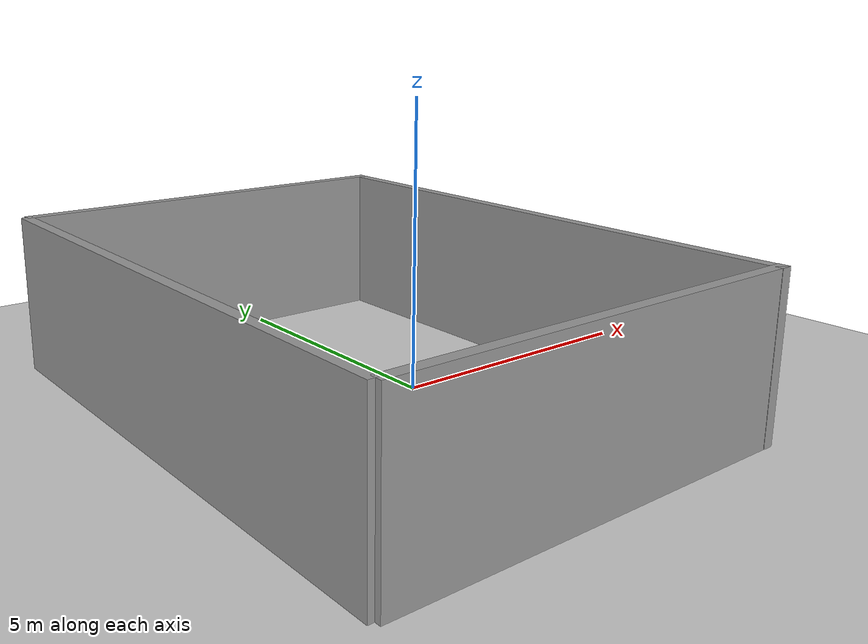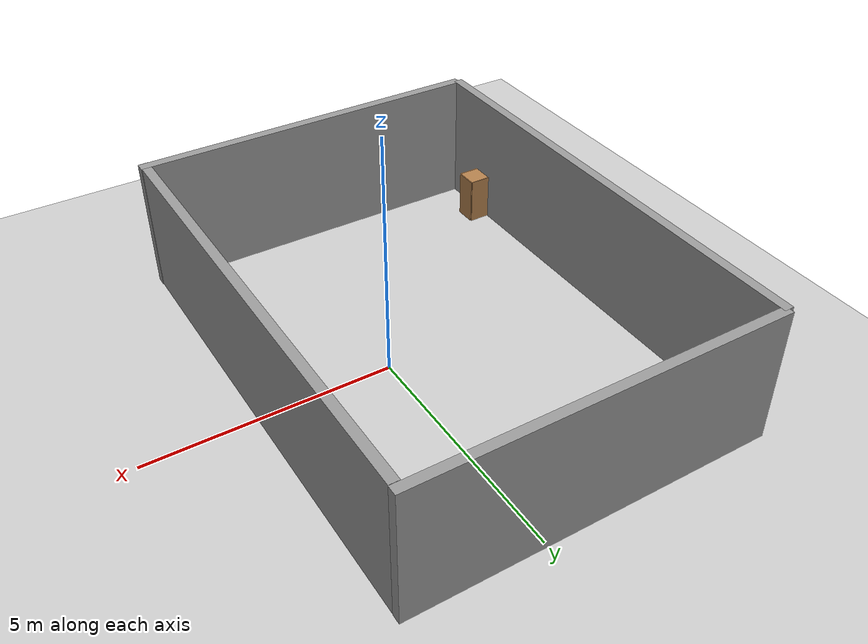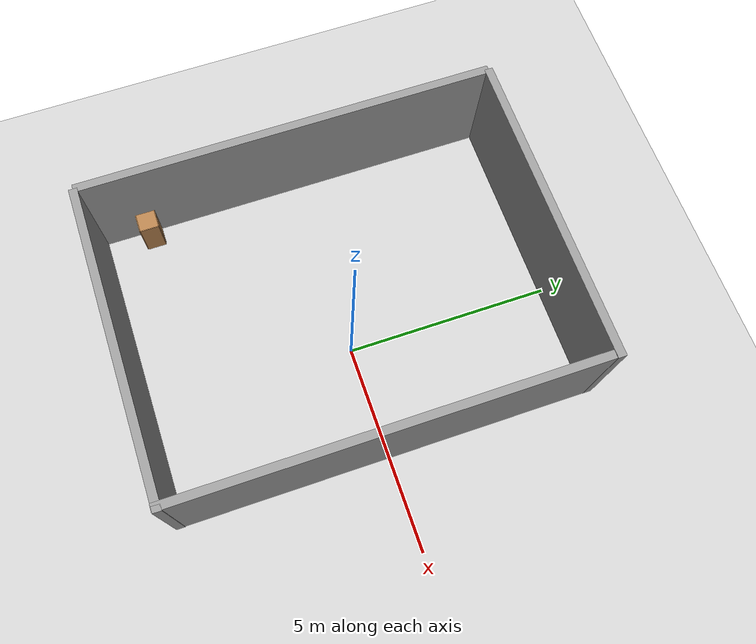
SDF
<sdf version="1.6">
 <world name="default">
  <light name="sun" type="directional">
   <pose>0 0 10 0 -0 0</pose>
   <diffuse>0.8 0.8 0.8 1</diffuse>
   <specular>0.2 0.2 0.2 1</specular>
   <attenuation>
    <range>1000</range>
    <constant>0.9</constant>
    <linear>0.01</linear>
    <quadratic>0.001</quadratic>
   </attenuation>
   <direction>-0.5 0.1 -0.9</direction>
  </light>
  <model name="ground_plane">
   <static>1</static>
   <link name="link">
    <collision name="collision">
     <geometry><plane><normal>0 0 1</normal><size>100 100</size></plane></geometry>
     <surface><friction><ode><mu>100</mu><mu2>50</mu2></ode></friction></surface>
    </collision>
    <visual name="visual">
     <cast_shadows>0</cast_shadows>
     <geometry><plane><normal>0 0 1</normal><size>100 100</size></plane></geometry>
     <material>
      <script><uri>file://media/materials/scripts/gazebo.material</uri><name>Gazebo/Grey</name></script>
     </material>
    </visual>
    <velocity_decay><linear>0</linear><angular>0</angular></velocity_decay>
   </link>
  </model>
  <physics name="default_physics" default="0" type="ode">
   <max_step_size>0.001</max_step_size>
   <real_time_factor>1</real_time_factor>
   <real_time_update_rate>1000</real_time_update_rate>
  </physics>
  <scene><ambient>0.4 0.4 0.4 1</ambient><background>0.7 0.7 0.7 1</background><shadows>1</shadows></scene>
  <spherical_coordinates>
   <surface_model>EARTH_WGS84</surface_model>
   <latitude_deg>0</latitude_deg>
   <longitude_deg>0</longitude_deg>
   <elevation>0</elevation>
   <heading_deg>0</heading_deg>
  </spherical_coordinates>
  <gravity>0 0 -9.8</gravity>
  <magnetic_field>6e-06 2.3e-05 -4.2e-05</magnetic_field>
  <atmosphere type="adiabatic"/>
  <model name="grey_wall">
   <static>1</static>
   <link name="link">
    <pose>0 0 1.4 0 -0 0</pose>
    <collision name="collision"><geometry><box><size>7.5 0.2 2.8</size></box></geometry></collision>
    <visual name="visual">
     <cast_shadows>0</cast_shadows>
     <geometry><box><size>7.5 0.2 2.8</size></box></geometry>
     <material>
      <script>
       <uri>model://grey_wall/materials/scripts</uri>
       <uri>model://grey_wall/materials/textures</uri>
       <name>vrc/grey_wall</name>
      </script>
     </material>
    </visual>
   </link>
   <pose>-1 -5 0 0 -0 0</pose>
  </model>
  <model name="grey_wall_0">
   <static>1</static>
   <link name="link">
    <pose>0 0 1.4 0 -0 0</pose>
    <collision name="collision"><geometry><box><size>7.5 0.2 2.8</size></box></geometry></collision>
    <visual name="visual">
     <cast_shadows>0</cast_shadows>
     <geometry><box><size>7.5 0.2 2.8</size></box></geometry>
     <material>
      <script>
       <uri>model://grey_wall/materials/scripts</uri>
       <uri>model://grey_wall/materials/textures</uri>
       <name>vrc/grey_wall</name>
      </script>
     </material>
    </visual>
   </link>
   <pose>-1 5 0 0 -0 0</pose>
  </model>
  <model name="grey_wall_1">
   <link name="link">
    <pose>0 0 1.4 0 -0 0</pose>
    <inertial>
     <mass>1</mass>
     <inertia><ixx>1</ixx><ixy>0</ixy><ixz>0</ixz><iyy>1</iyy><iyz>0</iyz><izz>1</izz></inertia>
    </inertial>
    <visual name="visual">
     <cast_shadows>0</cast_shadows>
     <geometry><box><size>10 0.2 2.8</size></box></geometry>
     <material>
      <script>
       <uri>model://grey_wall/materials/scripts</uri>
       <uri>model://grey_wall/materials/textures</uri>
       <name>vrc/grey_wall</name>
      </script>
      <shader type="pixel"><normal_map>__default__</normal_map></shader>
      <ambient>1 1 1 1</ambient>
      <diffuse>1 1 1 1</diffuse>
      <specular>0 0 0 1</specular>
      <emissive>0 0 0 1</emissive>
     </material>
    </visual>
    <collision name="collision">
     <geometry><box><size>10 0.2 2.8</size></box></geometry>
     <surface>
      <friction>
       <ode><mu>1</mu><mu2>1</mu2><fdir1>0 0 0</fdir1><slip1>0</slip1><slip2>0</slip2></ode>
       <torsional>
        <coefficient>1</coefficient>
        <patch_radius>0</patch_radius>
        <surface_radius>0</surface_radius>
        <use_patch_radius>1</use_patch_radius>
        <ode><slip>0</slip></ode>
       </torsional>
      </friction>
      <bounce><restitution_coefficient>0</restitution_coefficient><threshold>1e+06</threshold></bounce>
      <contact>
       <collide_without_contact>0</collide_without_contact>
       <collide_without_contact_bitmask>1</collide_without_contact_bitmask>
       <collide_bitmask>1</collide_bitmask>
       <ode>
        <soft_cfm>0</soft_cfm>
        <soft_erp>0.2</soft_erp>
        <kp>1e+13</kp>
        <kd>1</kd>
        <max_vel>0.01</max_vel>
        <min_depth>0</min_depth>
       </ode>
       <bullet>
        <split_impulse>1</split_impulse>
        <split_impulse_penetration_threshold>-0.01</split_impulse_penetration_threshold>
        <soft_cfm>0</soft_cfm>
        <soft_erp>0.2</soft_erp>
        <kp>1e+13</kp>
        <kd>1</kd>
       </bullet>
      </contact>
     </surface>
    </collision>
   </link>
   <static>1</static>
   <pose>-4.75 0 0 0 -0 1.57</pose>
  </model>
  <model name="grey_wall_1_clone">
   <link name="link">
    <pose>0 0 1.4 0 -0 0</pose>
    <inertial>
     <mass>1</mass>
     <inertia><ixx>1</ixx><ixy>0</ixy><ixz>0</ixz><iyy>1</iyy><iyz>0</iyz><izz>1</izz></inertia>
    </inertial>
    <visual name="visual">
     <cast_shadows>0</cast_shadows>
     <geometry><box><size>10 0.2 2.8</size></box></geometry>
     <material>
      <script>
       <uri>model://grey_wall/materials/scripts</uri>
       <uri>model://grey_wall/materials/textures</uri>
       <name>vrc/grey_wall</name>
      </script>
      <shader type="pixel"><normal_map>__default__</normal_map></shader>
      <ambient>1 1 1 1</ambient>
      <diffuse>1 1 1 1</diffuse>
      <specular>0 0 0 1</specular>
      <emissive>0 0 0 1</emissive>
     </material>
    </visual>
    <collision name="collision">
     <geometry><box><size>10 0.2 2.8</size></box></geometry>
     <surface>
      <friction>
       <ode><mu>1</mu><mu2>1</mu2><fdir1>0 0 0</fdir1><slip1>0</slip1><slip2>0</slip2></ode>
       <torsional>
        <coefficient>1</coefficient>
        <patch_radius>0</patch_radius>
        <surface_radius>0</surface_radius>
        <use_patch_radius>1</use_patch_radius>
        <ode><slip>0</slip></ode>
       </torsional>
      </friction>
      <bounce><restitution_coefficient>0</restitution_coefficient><threshold>1e+06</threshold></bounce>
      <contact>
       <collide_without_contact>0</collide_without_contact>
       <collide_without_contact_bitmask>1</collide_without_contact_bitmask>
       <collide_bitmask>1</collide_bitmask>
       <ode>
        <soft_cfm>0</soft_cfm>
        <soft_erp>0.2</soft_erp>
        <kp>1e+13</kp>
        <kd>1</kd>
        <max_vel>0.01</max_vel>
        <min_depth>0</min_depth>
       </ode>
       <bullet>
        <split_impulse>1</split_impulse>
        <split_impulse_penetration_threshold>-0.01</split_impulse_penetration_threshold>
        <soft_cfm>0</soft_cfm>
        <soft_erp>0.2</soft_erp>
        <kp>1e+13</kp>
        <kd>1</kd>
       </bullet>
      </contact>
     </surface>
    </collision>
   </link>
   <static>1</static>
   <pose>2.64038 -0.106909 0 0 -0 1.57</pose>
  </model>
  <model name="cabinet">
   <static>1</static>
   <link name="cabinet_bottom_plate">
    <inertial>
     <pose>0 0 -1 0 -0 0</pose>
     <inertia><ixx>2.05</ixx><ixy>0</ixy><ixz>0</ixz><iyy>2.05</iyy><iyz>0</iyz><izz>2.05</izz></inertia>
     <mass>25</mass>
    </inertial>
    <collision name="cabinet_bottom_plate_geom">
     <pose>0 0 0.01 0 -0 0</pose>
     <geometry><box><size>0.45 0.45 0.02</size></box></geometry>
    </collision>
    <visual name="cabinet_bottom_plate_geom_visual">
     <pose>0 0 0.01 0 -0 0</pose>
     <geometry><box><size>0.45 0.45 0.02</size></box></geometry>
     <material>
      <script><uri>file://media/materials/scripts/gazebo.material</uri><name>Gazebo/Wood</name></script>
     </material>
    </visual>
    <collision name="cabinet_bottom_plate_geom_cabinet_back_plate">
     <pose>0.235 0 0.51 0 -0 0</pose>
     <geometry><box><size>0.02 0.45 1.02</size></box></geometry>
    </collision>
    <visual name="cabinet_bottom_plate_geom_cabinet_back_plate_visual">
     <pose>0.235 0 0.51 0 -0 0</pose>
     <geometry><box><size>0.02 0.45 1.02</size></box></geometry>
     <material>
      <script><uri>file://media/materials/scripts/gazebo.material</uri><name>Gazebo/Wood</name></script>
     </material>
    </visual>
    <collision name="cabinet_bottom_plate_geom_cabinet_left_plate">
     <pose>0 0.235 0.51 0 -0 0</pose>
     <geometry><box><size>0.45 0.02 1.02</size></box></geometry>
    </collision>
    <visual name="cabinet_bottom_plate_geom_cabinet_left_plate_visual">
     <pose>0 0.235 0.51 0 -0 0</pose>
     <geometry><box><size>0.45 0.02 1.02</size></box></geometry>
     <material>
      <script><uri>file://media/materials/scripts/gazebo.material</uri><name>Gazebo/Wood</name></script>
     </material>
    </visual>
    <collision name="cabinet_bottom_plate_geom_cabinet_middle_plate">
     <pose>0 0 0.51 0 -0 0</pose>
     <geometry><box><size>0.45 0.45 0.02</size></box></geometry>
    </collision>
    <visual name="cabinet_bottom_plate_geom_cabinet_middle_plate_visual">
     <pose>0 0 0.51 0 -0 0</pose>
     <geometry><box><size>0.45 0.45 0.02</size></box></geometry>
     <material>
      <script><uri>file://media/materials/scripts/gazebo.material</uri><name>Gazebo/Wood</name></script>
     </material>
    </visual>
    <collision name="cabinet_bottom_plate_geom_cabinet_right_plate">
     <pose>0 -0.235 0.51 0 -0 0</pose>
     <geometry><box><size>0.45 0.02 1.02</size></box></geometry>
    </collision>
    <visual name="cabinet_bottom_plate_geom_cabinet_right_plate_visual">
     <pose>0 -0.235 0.51 0 -0 0</pose>
     <geometry><box><size>0.45 0.02 1.02</size></box></geometry>
     <material>
      <script><uri>file://media/materials/scripts/gazebo.material</uri><name>Gazebo/Wood</name></script>
     </material>
    </visual>
    <collision name="cabinet_bottom_plate_geom_cabinet_top_plate">
     <pose>0 0 1.01 0 -0 0</pose>
     <geometry><box><size>0.45 0.45 0.02</size></box></geometry>
    </collision>
    <visual name="cabinet_bottom_plate_geom_cabinet_top_plate_visual">
     <pose>0 0 1.01 0 -0 0</pose>
     <geometry><box><size>0.45 0.45 0.02</size></box></geometry>
     <material>
      <script><uri>file://media/materials/scripts/gazebo.material</uri><name>Gazebo/Wood</name></script>
     </material>
    </visual>
   </link>
   <pose>-4.4356 -3.74743 0 0 -0 0</pose>
  </model>
 </world>
</sdf>
